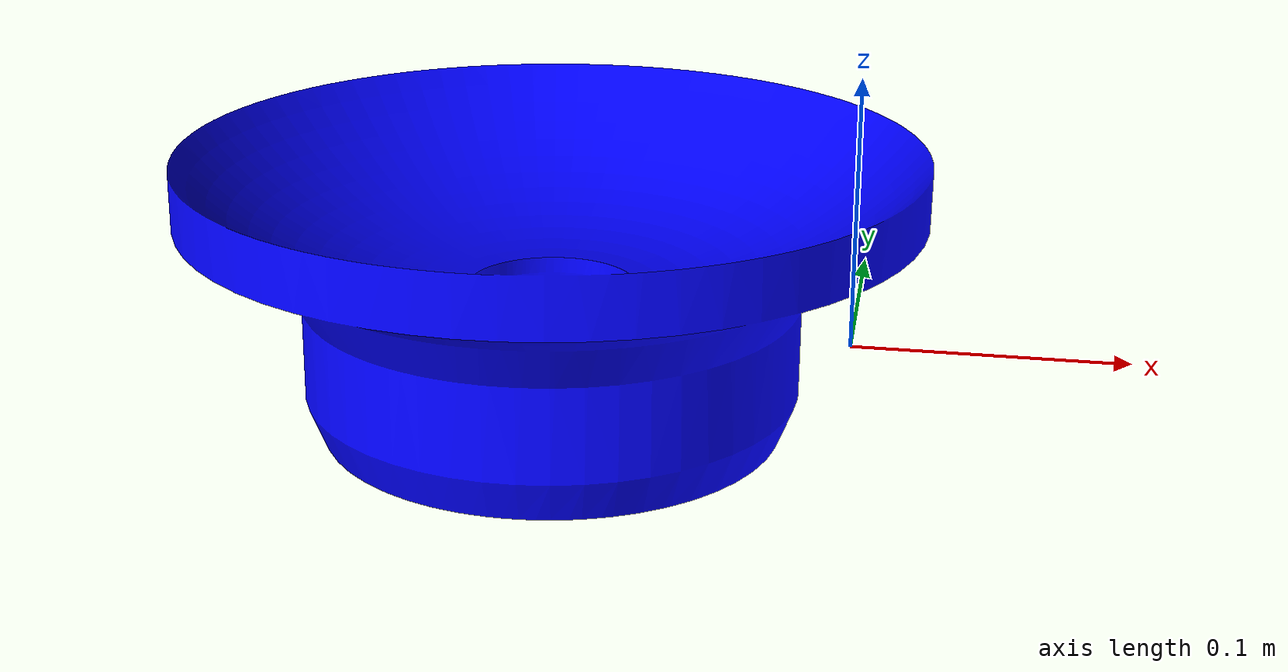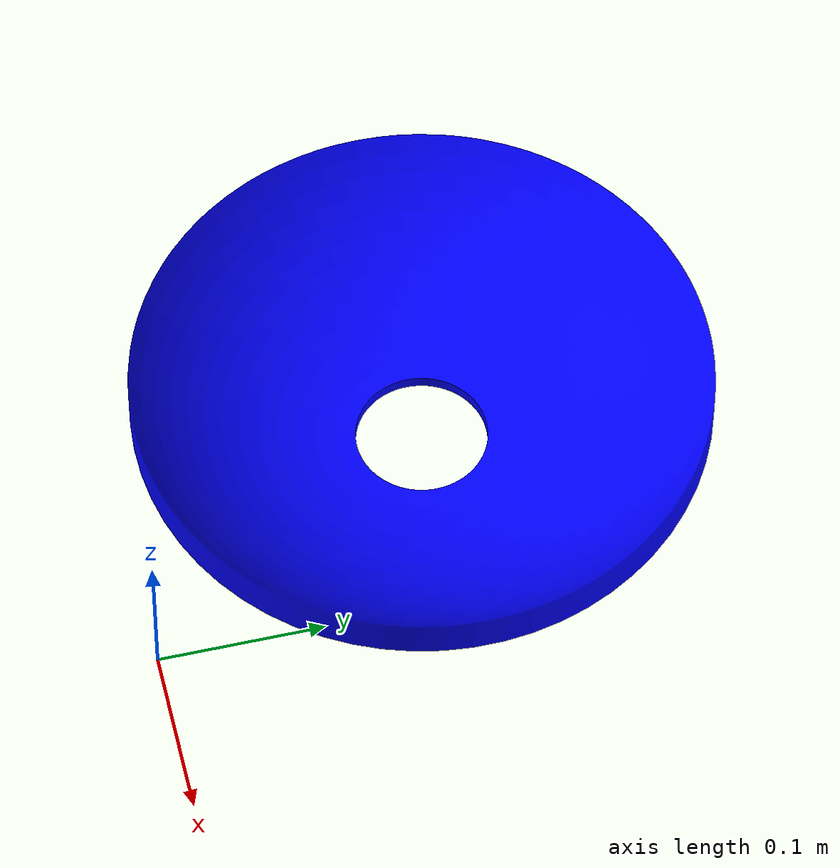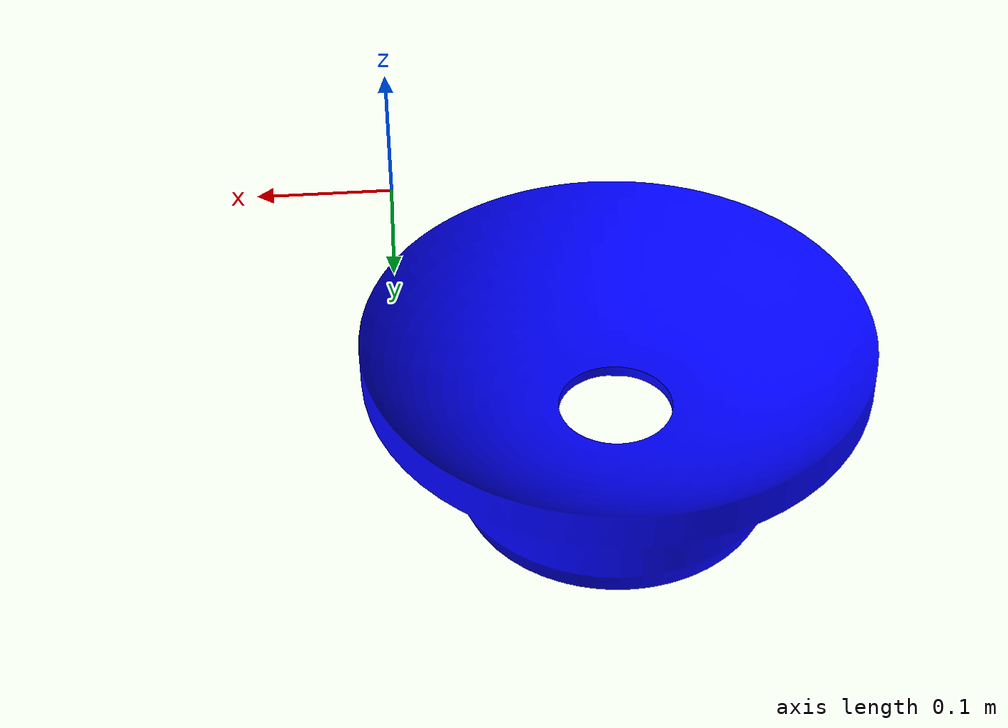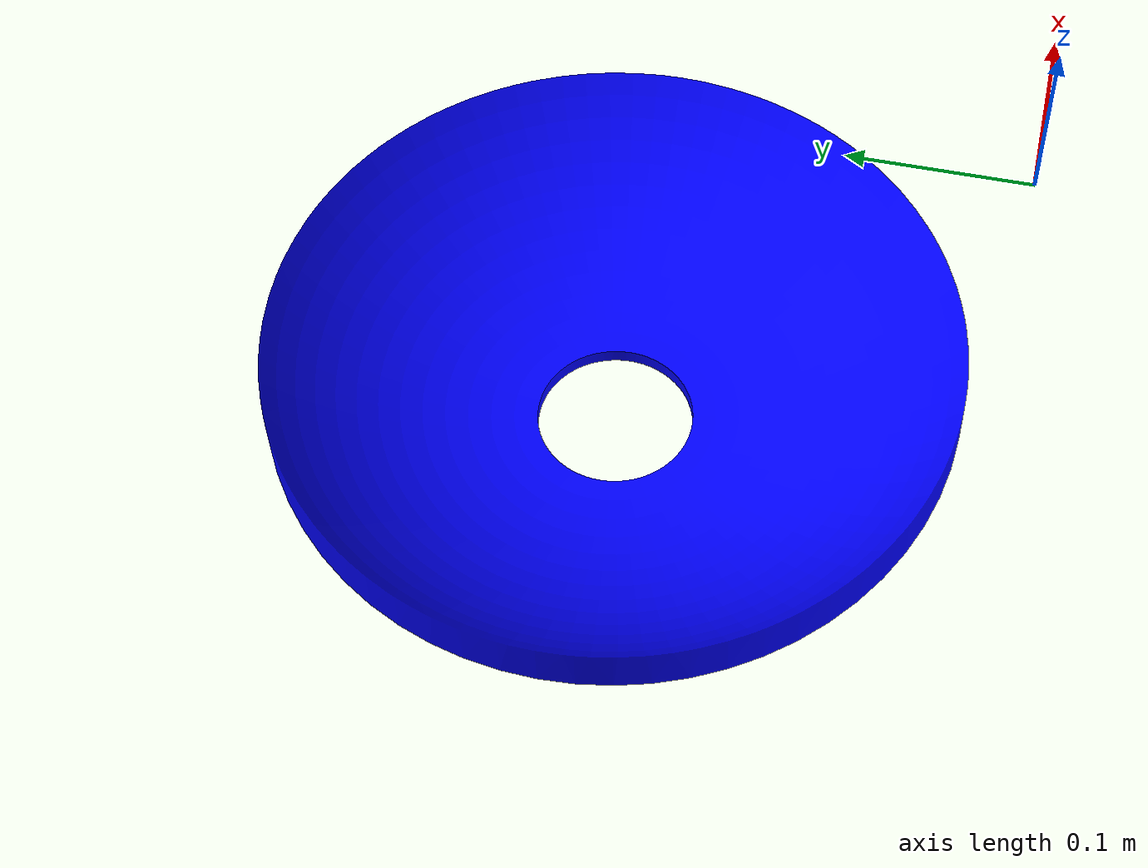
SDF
<?xml version="1.0"?>
<sdf version="1.5">
  <model name="ringv4">
    <!-- Set the model as static -->
    <static>true</static>

    <!-- Give the base link a unique name -->
    <link name="base">
      <!-- Offset the base by half the length of the cylinder -->
      <pose>0 0 0 0 0 0</pose>
      <inertial>
        <mass>1</mass>
        <inertia>
          <ixx>0.001087473</ixx>
          <iyy>0.001087473</iyy>
          <izz>0.001092437</izz>
          <ixy>0</ixy>
          <ixz>0</ixz>
          <iyz>0</iyz>
        </inertia>
      </inertial>
      <collision name="base_collision">
       <pose>-0.15 0.15 -0.055 1.57 0 0</pose>
        <geometry>
          <mesh>
            <uri>model://wetexplorer_gazebo/models/ringv4/meshes/ring_v4.stl</uri>
            <scale>0.0001 0.0001 0.0001</scale>
          </mesh>
        </geometry>

      </collision>

      <!-- The visual is mostly a copy of the collision -->
      <visual name="base_visual">
        <!-- Offset the visual by half the base's height. We are not rotating
             mesh since symmetrical -->
        <pose>-0.15 0.15 -0.055 1.57 0 0</pose>
        <geometry>
          <mesh>
            <uri>model://wetexplorer_gazebo/models/ringv4/meshes/ring_v4.stl</uri>
            <scale>0.0001 0.0001 0.0001</scale>
          </mesh>
        </geometry>
        <material>
          <!-- Set ambient color to blue: (R,G,B,Alpha) -->
          <ambient>0 0 1 1</ambient>   <!-- Blue ambient color -->
          <diffuse>0 0 1 1</diffuse>   <!-- Blue diffuse color -->
          <specular>0.1 0.1 0.1 1</specular> <!-- Small specular highlight -->
          <emissive>0 0 0 1</emissive> <!-- No emissive light -->
      </material>

      </visual>
    </link>
  </model>
</sdf>
